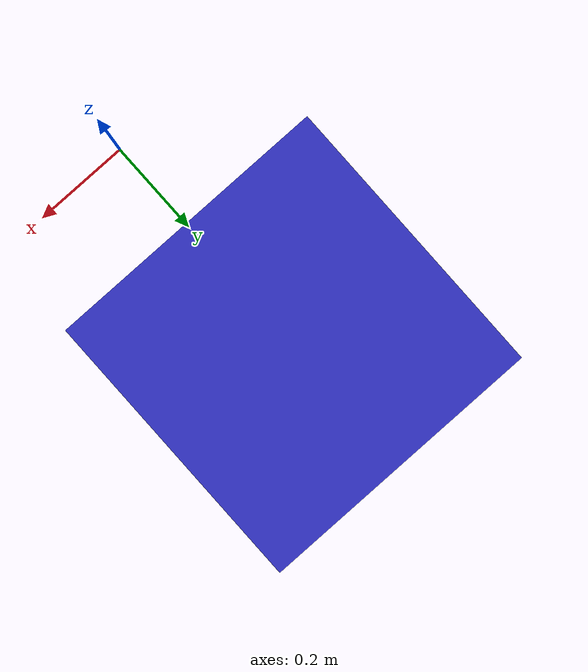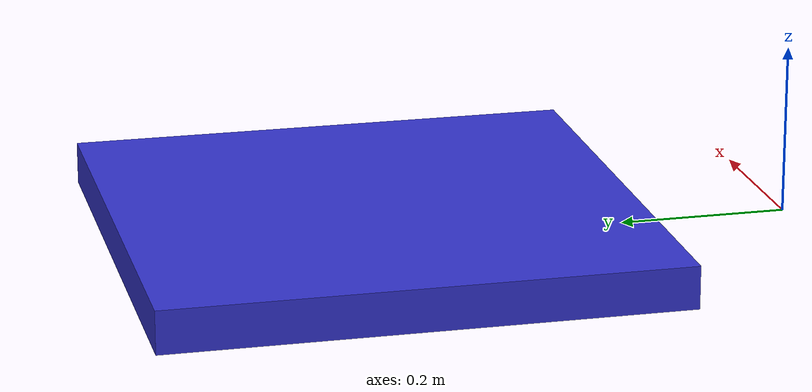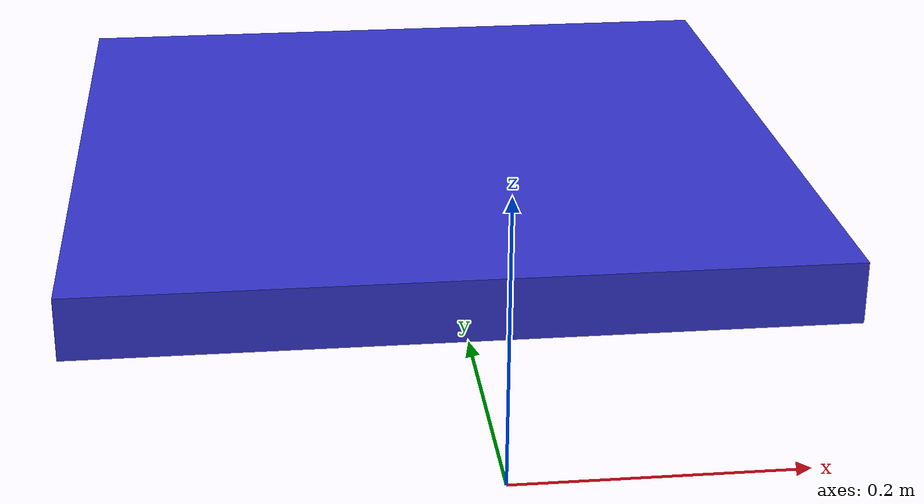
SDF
<?xml version="1.0" ?>
<sdf version="1.9">
  <model name="landing_platform_moving">

    <link name="base">
      <!-- Initial Y offset gives the spring its starting displacement -->
      <pose>0 0.5 0.025 0 0 0</pose>
      <inertial>
        <mass>5.0</mass>
        <inertia>
          <ixx>0.151</ixx><iyy>0.151</iyy><izz>0.300</izz>
          <ixy>0</ixy><ixz>0</ixz><iyz>0</iyz>
        </inertia>
      </inertial>
      <collision name="col">
        <geometry><box><size>0.6 0.6 0.05</size></box></geometry>
        <surface>
          <friction>
            <ode><mu>0</mu><mu2>0</mu2></ode>
          </friction>
          <contact>
            <ode><max_vel>0</max_vel></ode>
          </contact>
        </surface>
      </collision>
      <visual name="vis">
        <geometry><box><size>0.6 0.6 0.05</size></box></geometry>
        <material>
          <ambient>0.2 0.2 0.8 1</ambient>
          <diffuse>0.2 0.2 0.8 1</diffuse>
          <pbr>
            <metal>
              <albedo_map>materials/textures/aruco_markers/id_1_landing.png</albedo_map>
            </metal>
          </pbr>
        </material>
      </visual>
    </link>

    <joint name="world_joint" type="prismatic">
      <parent>world</parent>
      <child>base</child>
      <axis>
        <xyz>0 1 0</xyz>
        <dynamics>
          <spring_reference>0</spring_reference>
          <spring_stiffness>3.09</spring_stiffness>
          <damping>0.5</damping>
        </dynamics>
        <limit>
          <lower>-0.6</lower>
          <upper>0.6</upper>
        </limit>
      </axis>
    </joint>

  </model>
</sdf>
